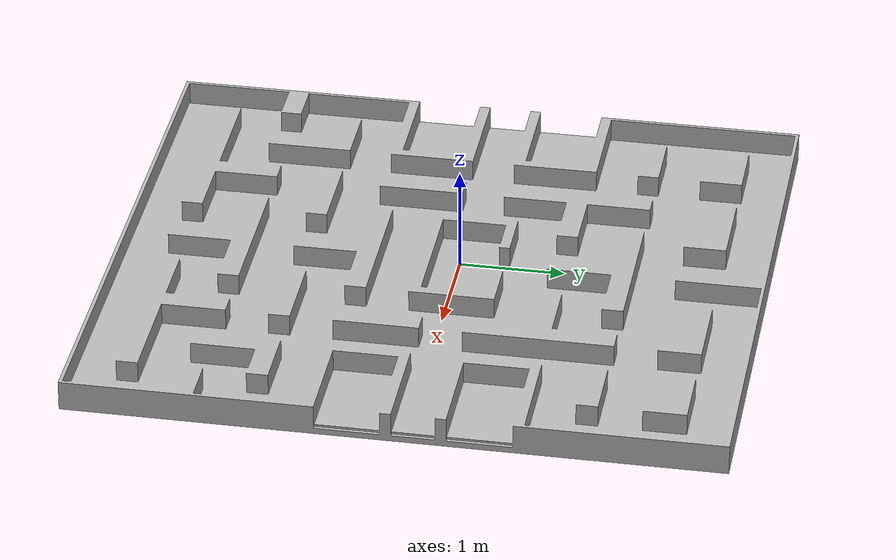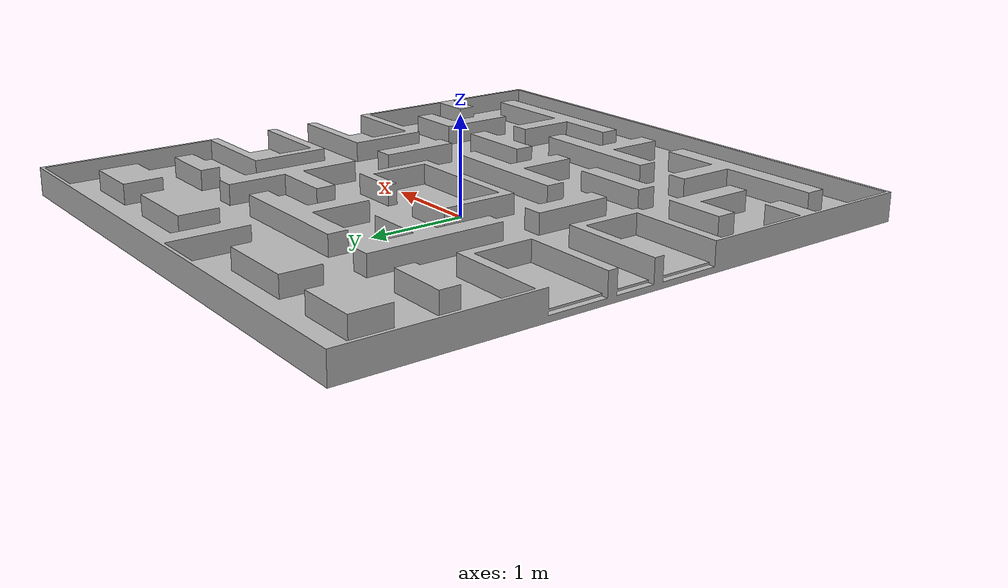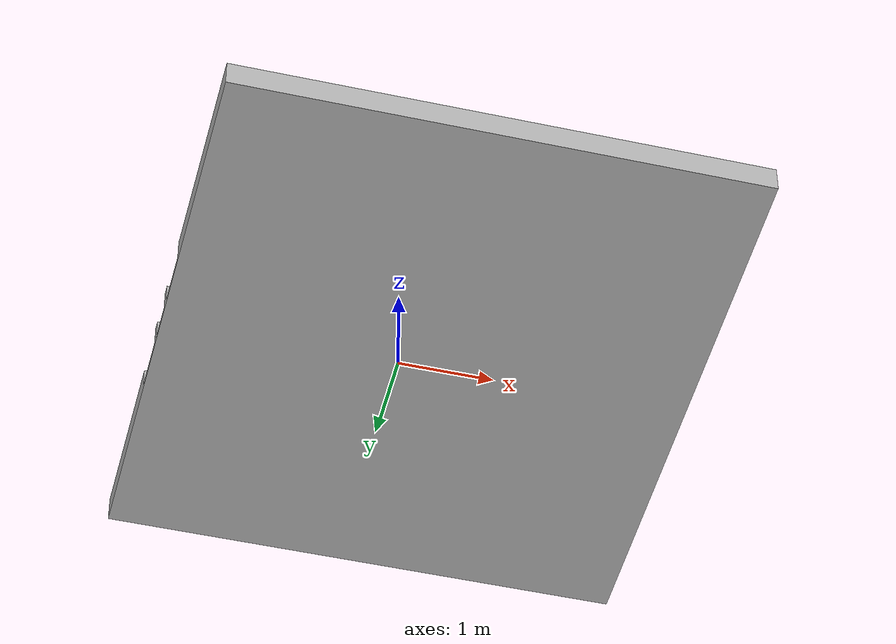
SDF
<?xml version="1.0" ?>
<sdf version="1.6">
  <model name="maze">
    <static>true</static>
    <link name="link">
      <collision name="collision">
        <pose>0 0 0 1.570796 0 0</pose>
        <geometry>
          <mesh>
            <scale>0.06 0.06 0.06</scale>
            <uri>model://maze_swarm/meshes/mazeSwarm.obj</uri>
          </mesh>
        </geometry>
      </collision>
      <visual name="visual">
        <pose>0 0 0 1.570796 0 0</pose>
        <geometry>
          <mesh>
            <scale>0.06 0.06 0.06</scale>
            <uri>model://maze_swarm/meshes/mazeSwarm.obj</uri>
          </mesh>
        </geometry>
      </visual>
    </link>
  </model>
</sdf>
